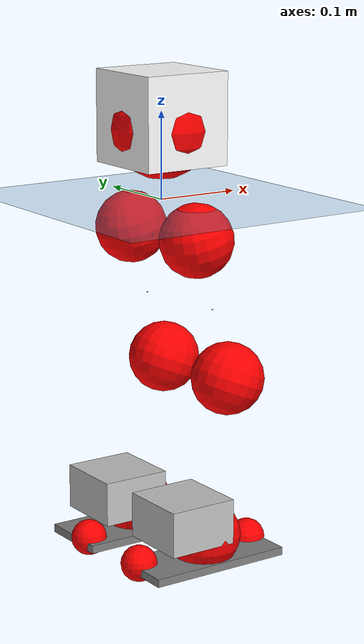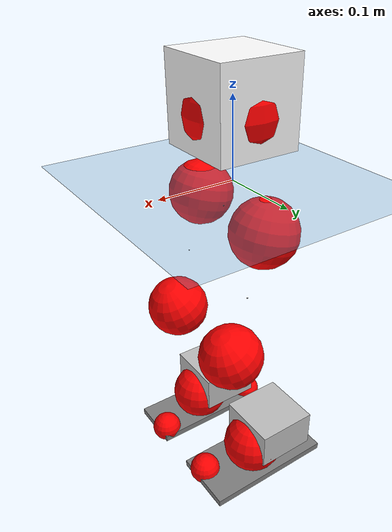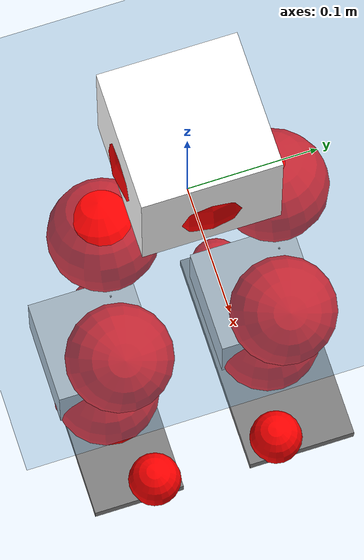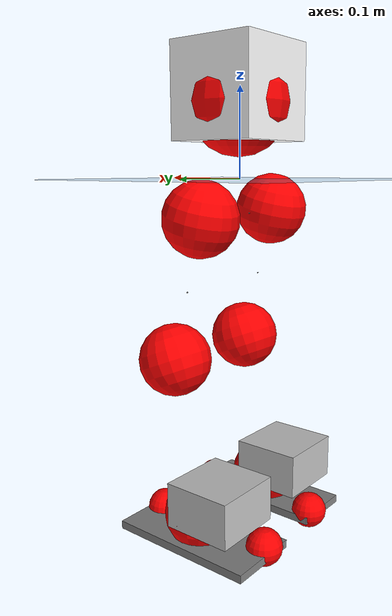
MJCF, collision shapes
<mujoco model="pi_12dof_release_v1">
  <compiler angle="radian" assetdir="assets" balanceinertia="true" inertiafromgeom="false"/>

  <option timestep="0.005" density="1.2" viscosity="2e-05"/>

  <size nkey="1"/>

  <visual>
    <quality shadowsize="8192"/>
    <map shadowclip="0.5"/>
  </visual>

  <default>
    <default class="/">
      <joint armature="0.01" damping="0.01" frictionloss="0.01"/>
      <geom contype="0" conaffinity="0" group="1" solref="-1000 -80"/>
      <site size="0.01 0.005 0.005" group="5"/>
      <general forcelimited="true" biastype="affine" gainprm="20" biasprm="0 -20 -0.5"/>
      <default class="foot">
        <geom size="0.0845 0.036 0.005" type="box" condim="6" group="4" priority="1" friction="0.9 0.2 0.2" solimp="0.015 1 0.005"/>
      </default>
      <default class="reward_collision_sphere">
        <geom group="5" rgba="1 0 0 1"/>
      </default>
    </default>
  </default>

  <asset>
    <texture type="skybox" colorspace="auto" name="//unnamed_texture_0" builtin="gradient" rgb1="0.95 0.95 0.95" rgb2="0.95 0.95 0.95" width="100" height="600"/>
    <texture type="2d" colorspace="auto" name="texplane" builtin="checker" rgb1="0.345 0.575 0.748" rgb2="0.345 0.575 0.748" markrgb="1 1 1" width="512" height="512"/>
    <material name="MatPlane" class="/" texture="texplane" texuniform="true" texrepeat="2 2" specular="0.9"/>
    <mesh name="baselink_1" class="/" file="baselink_1.STL"/>
    <mesh name="r_hip_pitch_link" class="/" file="r_hip_pitch_link.STL"/>
    <mesh name="r_hip_roll_link" class="/" file="r_hip_roll_link.STL"/>
    <mesh name="r_thigh_link" class="/" file="r_thigh_link.STL"/>
    <mesh name="r_calf_link" class="/" file="r_calf_link.STL"/>
    <mesh name="r_ankle_pitch_link" class="/" file="r_ankle_pitch_link.STL"/>
    <mesh name="r_ankle_roll_link" class="/" file="r_ankle_roll_link.STL"/>
    <mesh name="l_hip_pitch_link" class="/" file="l_hip_pitch_link.STL"/>
    <mesh name="l_hip_roll_link" class="/" file="l_hip_roll_link.STL"/>
    <mesh name="l_thigh_link" class="/" file="l_thigh_link.STL"/>
    <mesh name="l_calf_link" class="/" file="l_calf_link.STL"/>
    <mesh name="l_ankle_pitch_link" class="/" file="l_ankle_pitch_link.STL"/>
    <mesh name="l_ankle_roll_link" class="/" file="l_ankle_roll_link.STL"/>
  </asset>

  <worldbody>
    <geom name="floor" class="/" size="100 100 0.125" type="plane" group="0" material="MatPlane"/>
    <light name="toplight_shadow" class="/" pos="0 0 5" dir="0.0990148 0.0990148 -0.990148" type="directional" ambient="0.04 0.04 0.04" diffuse="0.55 0.55 0.55" specular="0.12 0.12 0.12"/>
    <light name="toplight_fill" class="/" pos="0 0 5" dir="0.0990148 0.0990148 -0.990148" type="directional" castshadow="false" ambient="0.04 0.04 0.04" diffuse="0.3 0.3 0.3" specular="0.08 0.08 0.08"/>
    <body name="trunk" pos="0.00119389 0.000962766 -0.00240397" quat="1 -0.00052283 0.000116771 -0.000790814">
      <inertial pos="0.00109006 0.00165676 0.049011" quat="0.695886 0.00956537 0.00762235 0.718049" mass="2.55046" diaginertia="0.0181197 0.00373625 0.0106947"/>
      <joint name="//unnamed_joint_0" type="free"/>
      <geom name="//unnamed_geom_1" class="/" type="mesh" density="0" rgba="1 1 1 1" mesh="baselink_1"/>
      <geom name="//unnamed_geom_2" class="/" size="0.0526238 0.0526238 0.0526238" pos="0 0 0.0957669" type="box" rgba="1 1 1 1"/>
      <geom name="//unnamed_geom_3" class="reward_collision_sphere" size="0.0578861" pos="0 0 0.083796"/>
      <site name="imu" class="/" pos="0.00516152 0.0133997 0.0104805" size="0.0105248"/>
      <camera name="track" class="/" pos="0 -1.6695 0" quat="0.707107 0.707107 0 0" mode="trackcom"/>
      <camera name="ego_camera" class="/" pos="0.0844192 0 0.215476" quat="-0.5 -0.5 0.5 0.5"/>
      <body name="r_hip_pitch_link" pos="-0.000884551 -0.0192414 -0.0370987" quat="0.992079 0.000643422 -0.125611 9.30566e-05">
        <inertial pos="0.00127512 -0.0493778 0.000564003" quat="-0.0169318 0.705707 -0.0235114 0.707911" mass="0.418769" diaginertia="0.000199078 4.10654e-05 0.000204787"/>
        <joint name="r_hip_pitch_joint" class="/" pos="0 0 0" axis="0.00365929 -0.999888 0.0145115" range="-1.80052 1.23546" armature="0.00990973" damping="0.0249701" frictionloss="0.0119843"/>
        <geom name="//unnamed_geom_4" class="/" type="mesh" density="0" rgba="0.75294 0.75294 0.75294 1" mesh="r_hip_pitch_link"/>
        <geom name="//unnamed_geom_5" class="/" size="0.000526238 0.000526238 0.000526238" type="box" rgba="0.75294 0.75294 0.75294 1"/>
        <body name="r_hip_roll_link" pos="0.00301975 -0.0475336 0.0025301" quat="0.999999 -0.000535697 -0.00114762 -0.000233666">
          <inertial pos="0.00115508 -0.00276726 -0.0748747" quat="0.705628 -0.079367 -0.0822427 0.699304" mass="0.441847" diaginertia="0.00060098 0.000107461 0.000308403"/>
          <joint name="r_hip_roll_joint" class="/" pos="0 0 0" axis="-0.999912 -0.0132351 -0.000988407" range="-0.132002 0.441297" armature="0.0095142" damping="0.00353395" frictionloss="0.0118437"/>
          <geom name="//unnamed_geom_6" class="/" type="mesh" density="0" rgba="0.75294 0.75294 0.75294 1" mesh="r_hip_roll_link"/>
          <geom name="//unnamed_geom_7" class="/" size="0.000526238 0.000526238 0.000526238" type="box" rgba="0.75294 0.75294 0.75294 1"/>
          <geom name="//unnamed_geom_8" class="reward_collision_sphere" size="0.042099"/>
          <body name="r_thigh_link" pos="-0.00041974 -0.00188944 -0.0833371" quat="0.999999 -0.00137752 -3.25188e-05 -2.97761e-06">
            <inertial pos="-0.00240114 5.50319e-05 -0.0539801" quat="0.742643 0.669668 -0.000160244 -0.00502073" mass="0.131166" diaginertia="0.000220639 4.02179e-05 0.000146036"/>
            <joint name="r_thigh_joint" class="/" pos="0 0 0" axis="0.0025956 -0.00130535 -0.999996" range="-0.354676 0.650127" armature="0.0092038" damping="0.00670714" frictionloss="0.00992206"/>
            <geom name="//unnamed_geom_9" class="/" type="mesh" density="0" rgba="0.75294 0.75294 0.75294 1" mesh="r_thigh_link"/>
            <geom name="//unnamed_geom_10" class="/" size="0.000526238 0.000526238 0.000526238" type="box" rgba="0.75294 0.75294 0.75294 1"/>
            <body name="r_calf_link" pos="-0.000140319 -0.00050302 -0.0861538" quat="0.947595 0.00117557 0.319472 -0.000505438">
              <inertial pos="0.00200747 -0.00318519 -0.0842481" quat="0.999879 -0.000794453 -0.00948096 0.0123417" mass="0.942252" diaginertia="0.00593385 0.00136835 0.000399776"/>
              <joint name="r_calf_joint" class="/" pos="0 0 0" axis="-0.00357747 -0.999899 -0.0137712" range="-1.62096 0.667956" armature="0.0107523" damping="0.0077867" frictionloss="0.0119619"/>
              <geom name="//unnamed_geom_11" class="/" type="mesh" density="0" rgba="0.75294 0.75294 0.75294 1" mesh="r_calf_link"/>
              <geom name="//unnamed_geom_12" class="/" size="0.000526238 0.000526238 0.000526238" type="box" rgba="0.75294 0.75294 0.75294 1"/>
              <geom name="//unnamed_geom_13" class="reward_collision_sphere" size="0.042099"/>
              <body name="r_ankle_pitch_link" pos="0.00157485 -0.0017577 -0.167302" quat="0.980047 8.90459e-05 -0.198768 0.000127651">
                <inertial pos="0.00807289 0.000260801 0.000895246" quat="0.00816516 0.700205 -0.0107699 0.713814" mass="0.205791" diaginertia="0.000545869 8.57046e-05 0.000294379"/>
                <joint name="r_ankle_pitch_joint" class="/" pos="0 0 0" axis="-0.00668977 -0.999964 -0.00524359" stiffness="0.00105113" range="-1.2513 0.49858" armature="0.0100693" damping="0" frictionloss="0.0119646"/>
                <geom name="//unnamed_geom_14" class="/" type="mesh" density="0" rgba="0.75294 0.75294 0.75294 1" mesh="r_ankle_pitch_link"/>
                <geom name="//unnamed_geom_15" class="/" size="0.0410465 0.042099 0.0263119" type="box" rgba="0.75294 0.75294 0.75294 1"/>
                <body name="r_ankle_roll_link" pos="0.085853 -0.000677736 -0.00152738" quat="1 -7.50525e-05 0.000256853 -0.000162418">
                  <inertial pos="-0.0274804 -0.0010575 -0.0169746" quat="0.56174 0.421027 0.43805 0.561514" mass="0.60966" diaginertia="0.00205413 0.000417942 0.000672488"/>
                  <joint name="r_ankle_roll_joint" class="/" pos="0 0 0" axis="-0.999967 0.000567792 -0.00808969" stiffness="0.00928643" range="-0.188768 0.129971" armature="0.0116147" damping="0.0113046" frictionloss="0.010244"/>
                  <geom name="//unnamed_geom_16" class="/" type="mesh" density="0" rgba="0.75294 0.75294 0.75294 1" mesh="r_ankle_roll_link"/>
                  <geom name="//unnamed_geom_17" class="/" type="mesh" rgba="0.75294 0.75294 0.75294 1" mesh="r_ankle_roll_link"/>
                  <geom name="right_foot" class="foot" size="0.0865587 0.0365099 0.00465112" pos="-0.0574051 0 -0.0526718"/>
                  <geom name="//unnamed_geom_19" class="reward_collision_sphere" size="0.042099" pos="-0.0562795 0 -0.0239417"/>
                  <geom name="//unnamed_geom_20" class="reward_collision_sphere" size="0.0210495" pos="0.0168838 0.016695 -0.0478835"/>
                  <geom name="//unnamed_geom_21" class="reward_collision_sphere" size="0.0210495" pos="-0.135071 0.016695 -0.0478835"/>
                  <site name="right_foot" class="foot" pos="-0.0574051 0 -0.0526718" size="0.0105248"/>
                </body>
              </body>
            </body>
          </body>
        </body>
      </body>
      <body name="l_hip_pitch_link" pos="0.00118581 0.0197914 -0.0416564" quat="0.992198 -0.000332577 -0.124673 0.000114506">
        <inertial pos="0.00278278 0.0467939 -0.00303053" quat="-0.04136 0.70422 0.0259219 0.708302" mass="0.464351" diaginertia="0.000228775 4.26421e-05 0.000253887"/>
        <joint name="l_hip_pitch_joint" class="/" pos="0 0 0" axis="0.0036906 0.999969 0.0069484" range="-1.21512 1.75148" armature="0.0105631" damping="0.0242866" frictionloss="0.010528"/>
        <geom name="//unnamed_geom_22" class="/" type="mesh" density="0" rgba="0.75294 0.75294 0.75294 1" mesh="l_hip_pitch_link"/>
        <geom name="//unnamed_geom_23" class="/" size="0.000526238 0.000526238 0.000526238" type="box" rgba="0.75294 0.75294 0.75294 1"/>
        <body name="l_hip_roll_link" pos="0.00043786 0.0447267 0.00248212" quat="1 -8.8767e-05 0.000358704 0.000238481">
          <inertial pos="-0.00194961 0.000274942 -0.0734672" quat="0.693955 -0.0735473 -0.0806782 0.711694" mass="0.466385" diaginertia="0.000602958 0.00011272 0.000330067"/>
          <joint name="l_hip_roll_joint" class="/" pos="0 0 0" axis="-0.999952 0.00196732 0.00958292" stiffness="0.00202878" range="-0.481125 0.170741" armature="0.00951398" damping="0.00757364" frictionloss="0.00971962"/>
          <geom name="//unnamed_geom_24" class="/" type="mesh" density="0" rgba="0.75294 0.75294 0.75294 1" mesh="l_hip_roll_link"/>
          <geom name="//unnamed_geom_25" class="/" size="0.000526238 0.000526238 0.000526238" type="box" rgba="0.75294 0.75294 0.75294 1"/>
          <geom name="//unnamed_geom_26" class="reward_collision_sphere" size="0.042099"/>
          <body name="l_thigh_link" pos="0.000729679 -0.000893463 -0.0842704" quat="1 1.57694e-05 6.55959e-06 -1.84619e-05">
            <inertial pos="-0.00106387 8.20589e-05 -0.0570191" quat="0.680934 0.732267 -0.00255575 0.0103991" mass="0.13379" diaginertia="0.000222027 3.86382e-05 0.000142427"/>
            <joint name="l_thigh_joint" class="/" pos="0 0 0" axis="0.00814309 -0.00574264 -0.99995" stiffness="0.00989747" range="-0.61081 0.355388" armature="0.0117374" damping="0" frictionloss="0.0118994"/>
            <geom name="//unnamed_geom_27" class="/" type="mesh" density="0" rgba="0.75294 0.75294 0.75294 1" mesh="l_thigh_link"/>
            <geom name="//unnamed_geom_28" class="/" size="0.000526238 0.000526238 0.000526238" type="box" rgba="0.75294 0.75294 0.75294 1"/>
            <body name="l_calf_link" pos="0.00121767 -0.00232389 -0.0842919" quat="0.947821 0.000630746 0.318804 -0.000188165">
              <inertial pos="0.00198164 0.00532837 -0.0849574" quat="0.999934 -0.000753533 0.0110884 -0.00293751" mass="0.948594" diaginertia="0.00634744 0.00142497 0.000434806"/>
              <joint name="l_calf_joint" class="/" pos="0 0 0" axis="-0.00937161 0.999935 0.00642993" range="-0.632593 1.59774" armature="0.0110141" damping="0.00752997" frictionloss="0.00924311"/>
              <geom name="//unnamed_geom_29" class="/" type="mesh" density="0" rgba="0.75294 0.75294 0.75294 1" mesh="l_calf_link"/>
              <geom name="//unnamed_geom_30" class="/" size="0.000526238 0.000526238 0.000526238" type="box" rgba="0.75294 0.75294 0.75294 1"/>
              <geom name="//unnamed_geom_31" class="reward_collision_sphere" size="0.042099"/>
              <body name="l_ankle_pitch_link" pos="-0.000656279 0.00202445 -0.168829" quat="0.98006 -3.37094e-05 -0.1987 2.70304e-05">
                <inertial pos="0.00633872 -0.00026795 0.000193897" quat="-0.00366759 0.707332 0.000533059 0.706871" mass="0.199211" diaginertia="0.000560641 9.32032e-05 0.000295849"/>
                <joint name="l_ankle_pitch_joint" class="/" pos="0 0 0" axis="0.00163598 0.999999 0.000375723" range="-0.501543 1.27793" armature="0.0105537" damping="0.000885044" frictionloss="0.0117004"/>
                <geom name="//unnamed_geom_32" class="/" type="mesh" density="0" rgba="0.75294 0.75294 0.75294 1" mesh="l_ankle_pitch_link"/>
                <geom name="//unnamed_geom_33" class="/" size="0.0410465 0.042099 0.0263119" type="box" rgba="0.75294 0.75294 0.75294 1"/>
                <body name="l_ankle_roll_link" pos="0.0843467 0.00017879 0.00249753" quat="1 -0.000524966 0.000126 0.000391786">
                  <inertial pos="-0.0299958 -0.00125088 -0.0169839" quat="0.562725 0.440437 0.43108 0.550931" mass="0.612091" diaginertia="0.00209023 0.000417635 0.000718669"/>
                  <joint name="l_ankle_roll_joint" class="/" pos="0 0 0" axis="-0.999967 0.00328767 -0.00747765" range="-0.150986 0.20049" armature="0.00980294" damping="0.0241657" frictionloss="0.00948768"/>
                  <geom name="//unnamed_geom_34" class="/" type="mesh" density="0" rgba="0.75294 0.75294 0.75294 1" mesh="l_ankle_roll_link"/>
                  <geom name="//unnamed_geom_35" class="/" type="mesh" rgba="0.75294 0.75294 0.75294 1" mesh="l_ankle_roll_link"/>
                  <geom name="left_foot" class="foot" size="0.0897878 0.0432831 0.00474536" pos="-0.0574051 0 -0.0526718"/>
                  <geom name="//unnamed_geom_37" class="reward_collision_sphere" size="0.042099" pos="-0.0562795 0 -0.0239417"/>
                  <geom name="//unnamed_geom_38" class="reward_collision_sphere" size="0.0210495" pos="0.0168838 -0.016695 -0.0478835"/>
                  <geom name="//unnamed_geom_39" class="reward_collision_sphere" size="0.0210495" pos="-0.135071 -0.016695 -0.0478835"/>
                  <site name="left_foot" class="foot" pos="-0.0574051 0 -0.0526718" size="0.0105248"/>
                </body>
              </body>
            </body>
          </body>
        </body>
      </body>
    </body>
  </worldbody>

  <contact>
    <pair class="/" geom1="floor" geom2="right_foot" name="//unnamed_contact_1"/>
    <pair class="/" geom1="floor" geom2="left_foot" name="//unnamed_contact_0"/>
  </contact>

  <actuator>
    <general name="r_hip_pitch_joint" class="/" joint="r_hip_pitch_joint" forcerange="-22.0247 22.0247" gainprm="20.802" biasprm="0 -20.802 -0.560358"/>
    <general name="r_hip_roll_joint" class="/" joint="r_hip_roll_joint" forcerange="-24.4531 24.4531" gainprm="20.802" biasprm="0 -20.802 -0.560358"/>
    <general name="r_thigh_joint" class="/" joint="r_thigh_joint" forcerange="-22.6669 22.6669" gainprm="20.802" biasprm="0 -20.802 -0.560358"/>
    <general name="r_calf_joint" class="/" joint="r_calf_joint" forcerange="-23.2266 23.2266" gainprm="20.802" biasprm="0 -20.802 -0.560358"/>
    <general name="r_ankle_pitch_joint" class="/" joint="r_ankle_pitch_joint" forcerange="-21.8492 21.8492" gainprm="20.802" biasprm="0 -20.802 -0.560358"/>
    <general name="r_ankle_roll_joint" class="/" joint="r_ankle_roll_joint" forcerange="-20.3763 20.3763" gainprm="20.802" biasprm="0 -20.802 -0.560358"/>
    <general name="l_hip_pitch_joint" class="/" joint="l_hip_pitch_joint" forcerange="-22.1682 22.1682" gainprm="20.802" biasprm="0 -20.802 -0.560358"/>
    <general name="l_hip_roll_joint" class="/" joint="l_hip_roll_joint" forcerange="-19.9595 19.9595" gainprm="20.802" biasprm="0 -20.802 -0.560358"/>
    <general name="l_thigh_joint" class="/" joint="l_thigh_joint" forcerange="-22.8864 22.8864" gainprm="20.802" biasprm="0 -20.802 -0.560358"/>
    <general name="l_calf_joint" class="/" joint="l_calf_joint" forcerange="-22.4055 22.4055" gainprm="20.802" biasprm="0 -20.802 -0.560358"/>
    <general name="l_ankle_pitch_joint" class="/" joint="l_ankle_pitch_joint" forcerange="-24.2316 24.2316" gainprm="20.802" biasprm="0 -20.802 -0.560358"/>
    <general name="l_ankle_roll_joint" class="/" joint="l_ankle_roll_joint" forcerange="-21.6709 21.6709" gainprm="20.802" biasprm="0 -20.802 -0.560358"/>
  </actuator>

  <sensor>
    <gyro site="imu" name="imu_angular_velocity"/>
    <velocimeter site="imu" name="imu_linear_velocity"/>
    <framelinvel objtype="site" objname="left_foot" name="left_foot_global_linear_velocity"/>
    <framelinvel objtype="site" objname="right_foot" name="right_foot_global_linear_velocity"/>
  </sensor>

  <keyframe>
    <key name="home" qpos="0 0 0.291 1 0 0 0 0.4 0 0 -0.8 0.4 0 -0.4 0 0 0.8 -0.4 0"/>
  </keyframe>
</mujoco>
